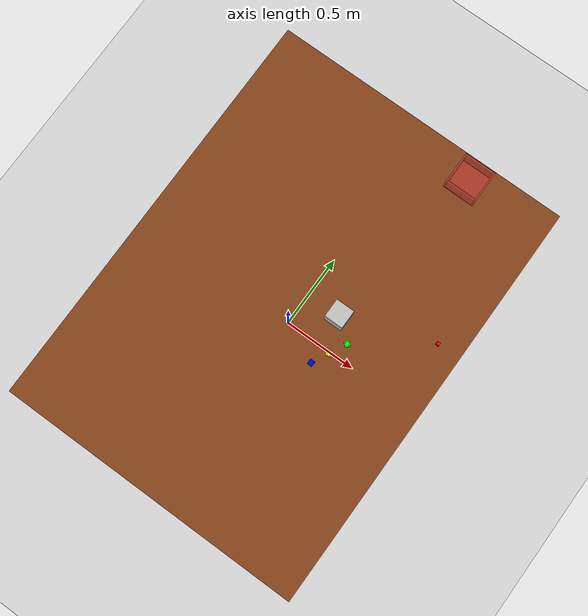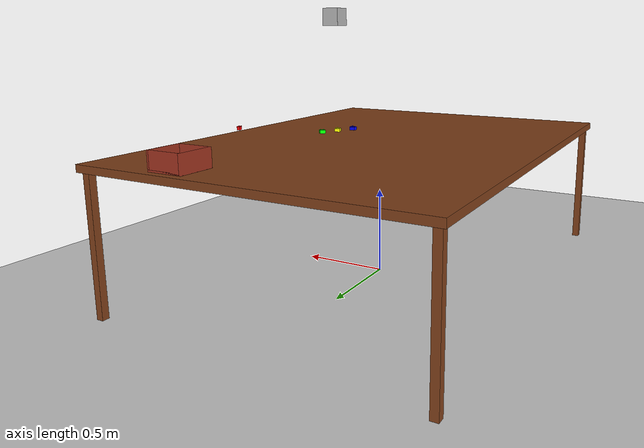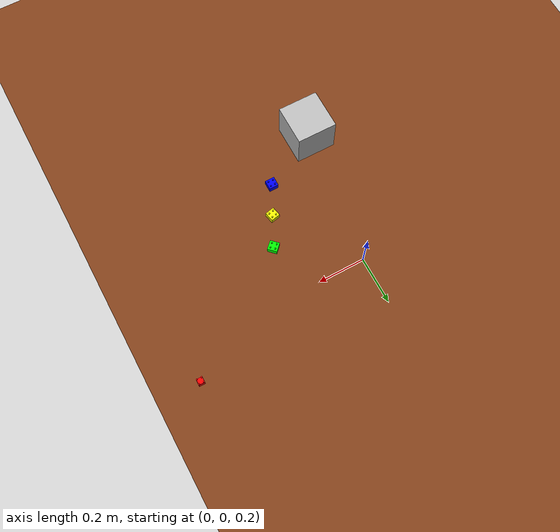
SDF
<?xml version="1.0" ?>
<sdf version="1.7">
  <world name="lego_sorting">
    <physics name="bullet_featherstone_physics" type="bullet_featherstone">
      <bullet>
        <solver>
          <type>btSequentialImpulseConstraintSolver</type>
        </solver>
        <featherstone>true</featherstone>
      </bullet>
      <max_step_size>0.001</max_step_size>
      <real_time_factor>0</real_time_factor>
      <damping>0.1</damping>
      <gravity>0.0 0.0 -9.8</gravity>
    </physics>

    <plugin filename="gz-sim-physics-system" name="gz::sim::systems::Physics"/>
    <plugin filename="gz-sim-user-commands-system" name="gz::sim::systems::UserCommands"/>
    <plugin filename="gz-sim-scene-broadcaster-system" name="gz::sim::systems::SceneBroadcaster"/>
    <plugin filename="gz-sim-sensors-system" name="gz::sim::systems::Sensors">
      <render_engine>ogre</render_engine>
    </plugin>
    <plugin filename="gz-sim-pose-publisher-system" name="gz::sim::systems::PosePublisher">
      <publish_link_pose>true</publish_link_pose>
      <publish_nested_model_pose>true</publish_nested_model_pose>
      <use_pose_vector_msg>true</use_pose_vector_msg>
      <static_publisher>true</static_publisher>
      <static_update_frequency>1</static_update_frequency>
    </plugin>

    <!-- Lighting -->
    <light type="directional" name="sun_dir">
      <cast_shadows>true</cast_shadows>
      <pose>0 0 10 0 0 0</pose>
      <diffuse>0.8 0.8 0.8 1</diffuse>
      <specular>0.2 0.2 0.2 1</specular>
      <direction>-0.5 0.1 -0.9</direction>
    </light>

    <include>
      <uri>https://fuel.gazebosim.org/1.0/OpenRobotics/models/Ground Plane</uri>
    </include>

    <scene>
      <ambient>0.8 0.8 0.8 1.0</ambient>
      <background>0.5 0.5 0.5 1.0</background>
      <shadows>true</shadows>
    </scene>

    <!-- Main Table with 4 Legs (Height 0.8m) -->
    <model name="table">
      <static>true</static>
      <!-- Base coordinate for the whole model -->
      <pose>0 0 0 0 0 0</pose>
      <link name="link">

        <collision name="top_collision">
          <pose>0 0 0.78 0 0 0</pose>
          <geometry><box><size>1.9 2.6 0.04</size></box></geometry>
        </collision>
        <visual name="top_visual">
          <pose>0 0 0.78 0 0 0</pose>
          <geometry><box><size>1.9 2.6 0.04</size></box></geometry>
          <material>
            <ambient>0.4 0.2 0.05 1</ambient>
            <diffuse>0.5 0.25 0.1 1</diffuse>
            <specular>0.05 0.05 0.05 1</specular>
          </material>
        </visual>

        <!-- Legs moved to the new corners 2026-09-03 (X: +-0.46 -> +-0.91, Y: +-0.76 -> +-1.26),
             same 0.04m margin-from-edge convention as before, matching the enlarged table top. -->
        <!-- Leg 1 (Front Left) -->
        <collision name="leg1_collision"><pose>-0.91 -1.26 0.38 0 0 0</pose><geometry><box><size>0.04 0.04 0.76</size></box></geometry></collision>
        <visual name="leg1_visual"><pose>-0.91 -1.26 0.38 0 0 0</pose><geometry><box><size>0.04 0.04 0.76</size></box></geometry><material><ambient>0.4 0.2 0.05 1</ambient><diffuse>0.5 0.25 0.1 1</diffuse></material></visual>

        <!-- Leg 2 (Front Right) -->
        <collision name="leg2_collision"><pose>0.91 -1.26 0.38 0 0 0</pose><geometry><box><size>0.04 0.04 0.76</size></box></geometry></collision>
        <visual name="leg2_visual"><pose>0.91 -1.26 0.38 0 0 0</pose><geometry><box><size>0.04 0.04 0.76</size></box></geometry><material><ambient>0.4 0.2 0.05 1</ambient><diffuse>0.5 0.25 0.1 1</diffuse></material></visual>

        <!-- Leg 3 (Back Left) -->
        <collision name="leg3_collision"><pose>-0.91 1.26 0.38 0 0 0</pose><geometry><box><size>0.04 0.04 0.76</size></box></geometry></collision>
        <visual name="leg3_visual"><pose>-0.91 1.26 0.38 0 0 0</pose><geometry><box><size>0.04 0.04 0.76</size></box></geometry><material><ambient>0.4 0.2 0.05 1</ambient><diffuse>0.5 0.25 0.1 1</diffuse></material></visual>

        <!-- Leg 4 (Back Right) -->
        <collision name="leg4_collision"><pose>0.91 1.26 0.38 0 0 0</pose><geometry><box><size>0.04 0.04 0.76</size></box></geometry></collision>
        <visual name="leg4_visual"><pose>0.91 1.26 0.38 0 0 0</pose><geometry><box><size>0.04 0.04 0.76</size></box></geometry><material><ambient>0.4 0.2 0.05 1</ambient><diffuse>0.5 0.25 0.1 1</diffuse></material></visual>

      </link>
    </model>

    <!-- Sorting Bin (Hollow, Red/translucent) -->
    <model name="bin">
        <!-- Y corrected 2026-09-03: world Y must be true_base_Y (0.55) + real offset (0.608),
             not the raw real offset alone -- same arithmetic mistake as the lego pose. -->
        <pose>0.415 1.158 0.85 0 0 0</pose>
        <static>true</static>
        <link name="link">

            <!-- Base -->
            <collision name="base_coll"><pose>0 0 -0.045 0 0 0</pose><geometry><box><size>0.2 0.2 0.01</size></box></geometry></collision>
            <visual name="base_vis"><pose>0 0 -0.045 0 0 0</pose><geometry><box><size>0.2 0.2 0.01</size></box></geometry>
                <material><ambient>0.3 0.3 0.3 1</ambient><diffuse>0.8 0.2 0.2 0.5</diffuse></material></visual>

            <!-- Left Wall -->
            <collision name="wall1_coll"><pose>0.095 0 0 0 0 0</pose><geometry><box><size>0.01 0.2 0.1</size></box></geometry></collision>
            <visual name="wall1_vis"><pose>0.095 0 0 0 0 0</pose><geometry><box><size>0.01 0.2 0.1</size></box></geometry>
                <material><ambient>0.3 0.3 0.3 1</ambient><diffuse>0.8 0.2 0.2 0.5</diffuse></material></visual>

            <!-- Right Wall -->
            <collision name="wall2_coll"><pose>-0.095 0 0 0 0 0</pose><geometry><box><size>0.01 0.2 0.1</size></box></geometry></collision>
            <visual name="wall2_vis"><pose>-0.095 0 0 0 0 0</pose><geometry><box><size>0.01 0.2 0.1</size></box></geometry>
                <material><ambient>0.3 0.3 0.3 1</ambient><diffuse>0.8 0.2 0.2 0.5</diffuse></material></visual>

            <!-- Front Wall -->
            <collision name="wall3_coll"><pose>0 0.095 0 0 0 0</pose><geometry><box><size>0.18 0.01 0.1</size></box></geometry></collision>
            <visual name="wall3_vis"><pose>0 0.095 0 0 0 0</pose><geometry><box><size>0.18 0.01 0.1</size></box></geometry>
                <material><ambient>0.3 0.3 0.3 1</ambient><diffuse>0.8 0.2 0.2 0.5</diffuse></material></visual>

            <!-- Back Wall -->
            <collision name="wall4_coll"><pose>0 -0.095 0 0 0 0</pose><geometry><box><size>0.18 0.01 0.1</size></box></geometry></collision>
            <visual name="wall4_vis"><pose>0 -0.095 0 0 0 0</pose><geometry><box><size>0.18 0.01 0.1</size></box></geometry>
                <material><ambient>0.3 0.3 0.3 1</ambient><diffuse>0.8 0.2 0.2 0.5</diffuse></material></visual>

        </link>
    </model>

    <!-- Lego Bricks with Studs -->
    <model name="lego_red">
      <pose>0.802 0.290 0.85 0 0 0</pose>
      <link name="link">
        <inertial>
            <mass>0.05</mass>
            <inertia><ixx>0.00005</ixx><iyy>0.00005</iyy><izz>0.00005</izz></inertia>
        </inertial>
        <collision name="collision">
          <geometry>
            <box><size>0.020 0.020 0.020</size></box> <!-- Real block measured 2026-09-03: ~20mm across, consistent from two grasp angles 90deg apart. Was 0.057 (Rubik's-cube-sized guess). -->
          </geometry>
          <surface>
            <friction>
              <ode><mu>1.0</mu><mu2>1.0</mu2></ode>
            </friction>
          </surface>
        </collision>
        <visual name="base_visual">
          <geometry>
            <box><size>0.020 0.020 0.020</size></box>
          </geometry>
          <material>
            <ambient>1 0 0 1</ambient>
            <diffuse>1 0 0 1</diffuse>
          </material>
        </visual>
        <!-- Studs -->
        <visual name="stud1">
          <pose>0.008 0.008 0.012 0 0 0</pose>
          <geometry><cylinder><radius>0.0024</radius><length>0.004</length></cylinder></geometry>
          <material><ambient>1 0 0 1</ambient><diffuse>1 0 0 1</diffuse></material>
        </visual>
        <visual name="stud2">
          <pose>0.008 -0.008 0.012 0 0 0</pose>
          <geometry><cylinder><radius>0.0024</radius><length>0.004</length></cylinder></geometry>
          <material><ambient>1 0 0 1</ambient><diffuse>1 0 0 1</diffuse></material>
        </visual>
        <visual name="stud3">
          <pose>-0.008 0.008 0.012 0 0 0</pose>
          <geometry><cylinder><radius>0.0024</radius><length>0.004</length></cylinder></geometry>
          <material><ambient>1 0 0 1</ambient><diffuse>1 0 0 1</diffuse></material>
        </visual>
        <visual name="stud4">
          <pose>-0.008 -0.008 0.012 0 0 0</pose>
          <geometry><cylinder><radius>0.0024</radius><length>0.004</length></cylinder></geometry>
          <material><ambient>1 0 0 1</ambient><diffuse>1 0 0 1</diffuse></material>
        </visual>
      </link>
    </model>

    <model name="lego_blue">
      <pose>0.3 -0.2 0.82 0 0 0</pose>
      <link name="link">
        <inertial>
            <mass>0.01</mass>
            <inertia><ixx>0.00001</ixx><iyy>0.00001</iyy><izz>0.00001</izz></inertia>
        </inertial>
        <collision name="collision">
          <geometry>
            <box><size>0.032 0.032 0.02</size></box>
          </geometry>
        </collision>
        <visual name="base_visual">
          <geometry>
            <box><size>0.032 0.032 0.02</size></box>
          </geometry>
          <material>
            <ambient>0 0 1 1</ambient>
            <diffuse>0 0 1 1</diffuse>
          </material>
        </visual>
        <!-- Studs -->
        <visual name="stud1"><pose>0.008 0.008 0.012 0 0 0</pose><geometry><cylinder><radius>0.0024</radius><length>0.004</length></cylinder></geometry><material><ambient>0 0 1 1</ambient><diffuse>0 0 1 1</diffuse></material></visual>
        <visual name="stud2"><pose>0.008 -0.008 0.012 0 0 0</pose><geometry><cylinder><radius>0.0024</radius><length>0.004</length></cylinder></geometry><material><ambient>0 0 1 1</ambient><diffuse>0 0 1 1</diffuse></material></visual>
        <visual name="stud3"><pose>-0.008 0.008 0.012 0 0 0</pose><geometry><cylinder><radius>0.0024</radius><length>0.004</length></cylinder></geometry><material><ambient>0 0 1 1</ambient><diffuse>0 0 1 1</diffuse></material></visual>
        <visual name="stud4"><pose>-0.008 -0.008 0.012 0 0 0</pose><geometry><cylinder><radius>0.0024</radius><length>0.004</length></cylinder></geometry><material><ambient>0 0 1 1</ambient><diffuse>0 0 1 1</diffuse></material></visual>
      </link>
    </model>

    <model name="lego_green">
      <pose>0.4 0.0 0.82 0 0 0.785</pose>
      <link name="link">
        <inertial>
            <mass>0.01</mass>
            <inertia><ixx>0.00001</ixx><iyy>0.00001</iyy><izz>0.00001</izz></inertia>
        </inertial>
        <collision name="collision">
          <geometry>
            <box><size>0.032 0.032 0.02</size></box>
          </geometry>
        </collision>
        <visual name="base_visual">
          <geometry>
            <box><size>0.032 0.032 0.02</size></box>
          </geometry>
          <material>
            <ambient>0 1 0 1</ambient>
            <diffuse>0 1 0 1</diffuse>
          </material>
        </visual>
        <!-- Studs -->
        <visual name="stud1"><pose>0.008 0.008 0.012 0 0 0</pose><geometry><cylinder><radius>0.0024</radius><length>0.004</length></cylinder></geometry><material><ambient>0 1 0 1</ambient><diffuse>0 1 0 1</diffuse></material></visual>
        <visual name="stud2"><pose>0.008 -0.008 0.012 0 0 0</pose><geometry><cylinder><radius>0.0024</radius><length>0.004</length></cylinder></geometry><material><ambient>0 1 0 1</ambient><diffuse>0 1 0 1</diffuse></material></visual>
        <visual name="stud3"><pose>-0.008 0.008 0.012 0 0 0</pose><geometry><cylinder><radius>0.0024</radius><length>0.004</length></cylinder></geometry><material><ambient>0 1 0 1</ambient><diffuse>0 1 0 1</diffuse></material></visual>
        <visual name="stud4"><pose>-0.008 -0.008 0.012 0 0 0</pose><geometry><cylinder><radius>0.0024</radius><length>0.004</length></cylinder></geometry><material><ambient>0 1 0 1</ambient><diffuse>0 1 0 1</diffuse></material></visual>
      </link>
    </model>

    <model name="lego_yellow">
      <pose>0.35 -0.1 0.82 0 0 0.2</pose>
      <link name="link">
        <inertial>
            <mass>0.01</mass>
            <inertia><ixx>0.00001</ixx><iyy>0.00001</iyy><izz>0.00001</izz></inertia>
        </inertial>
        <collision name="collision">
          <geometry>
            <box><size>0.032 0.032 0.02</size></box>
          </geometry>
        </collision>
        <visual name="base_visual">
          <geometry>
            <box><size>0.032 0.032 0.02</size></box>
          </geometry>
          <material>
            <ambient>1 1 0 1</ambient>
            <diffuse>1 1 0 1</diffuse>
          </material>
        </visual>
        <!-- Studs -->
        <visual name="stud1"><pose>0.008 0.008 0.012 0 0 0</pose><geometry><cylinder><radius>0.0024</radius><length>0.004</length></cylinder></geometry><material><ambient>1 1 0 1</ambient><diffuse>1 1 0 1</diffuse></material></visual>
        <visual name="stud2"><pose>0.008 -0.008 0.012 0 0 0</pose><geometry><cylinder><radius>0.0024</radius><length>0.004</length></cylinder></geometry><material><ambient>1 1 0 1</ambient><diffuse>1 1 0 1</diffuse></material></visual>
        <visual name="stud3"><pose>-0.008 0.008 0.012 0 0 0</pose><geometry><cylinder><radius>0.0024</radius><length>0.004</length></cylinder></geometry><material><ambient>1 1 0 1</ambient><diffuse>1 1 0 1</diffuse></material></visual>
        <visual name="stud4"><pose>-0.008 -0.008 0.012 0 0 0</pose><geometry><cylinder><radius>0.0024</radius><length>0.004</length></cylinder></geometry><material><ambient>1 1 0 1</ambient><diffuse>1 1 0 1</diffuse></material></visual>
      </link>
    </model>

    <!-- GUI Camera (User View) -->
    <gui fullscreen='0'>
      <camera name='user_camera'>
        <pose>1.6 -1.2 1.8 0 0.5 2.5</pose>
        <view_controller>orbit</view_controller>
        <projection_type>perspective</projection_type>
      </camera>
    </gui>

    <!-- Overhead Camera (Adjusted Pose) -->
    <model name="camera">
      <pose>0.3 0.0 1.5 0 1.5708 0</pose>
      <link name="link">
        <inertial>
          <mass>0.1</mass>
          <inertia>
            <ixx>0.000166667</ixx>
            <iyy>0.000166667</iyy>
            <izz>0.000166667</izz>
          </inertia>
        </inertial>

        <visual name="visual">
          <geometry>
            <box>
              <size>0.1 0.1 0.1</size>
            </box>
          </geometry>
        </visual>
        <sensor name="camera" type="camera">
          <camera>
            <horizontal_fov>1.047</horizontal_fov>
            <image>
              <width>640</width>
              <height>480</height>
            </image>
            <clip>
              <near>0.1</near>
              <far>100</far>
            </clip>
          </camera>
          <always_on>1</always_on>
          <update_rate>30</update_rate>
          <visualize>true</visualize>
          <topic>camera/image_raw</topic>
        </sensor>

        <!-- Depth Camera Sensor -->
        <sensor name="depth_camera" type="depth_camera">
          <update_rate>30</update_rate>
          <topic>camera/depth_image</topic>
          <camera>
            <horizontal_fov>1.047</horizontal_fov>
            <image>
              <width>640</width>
              <height>480</height>
              <format>R_FLOAT32</format>
            </image>
            <clip>
              <near>0.1</near>
              <far>100</far>
            </clip>
          </camera>
          <always_on>1</always_on>
          <visualize>true</visualize>
        </sensor>
      </link>
      <static>true</static>
    </model>

  </world>
</sdf>
